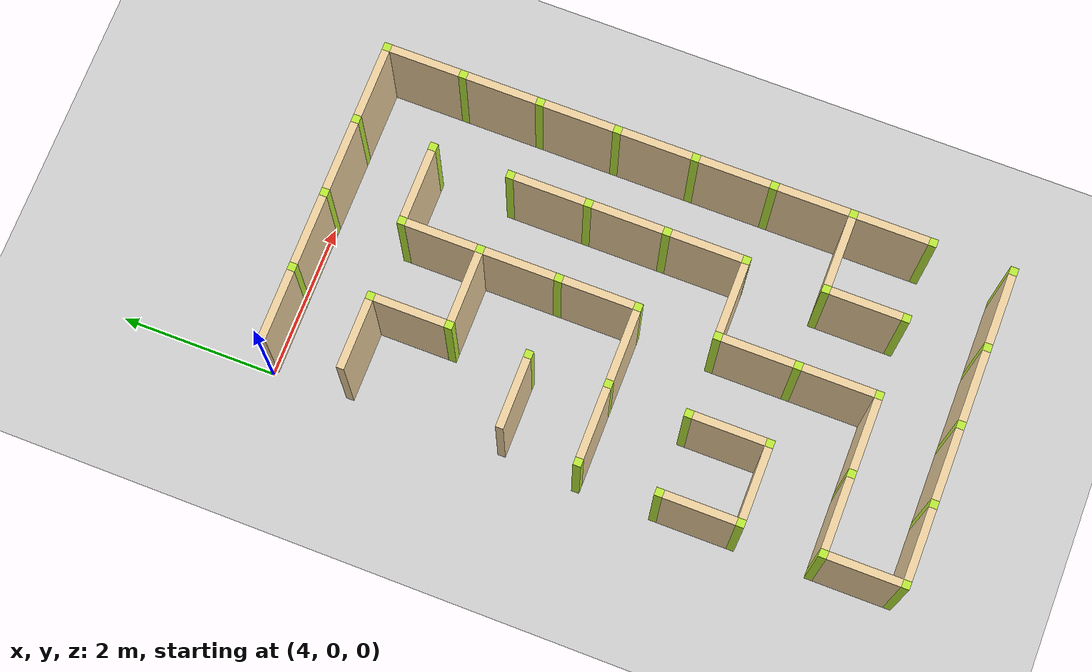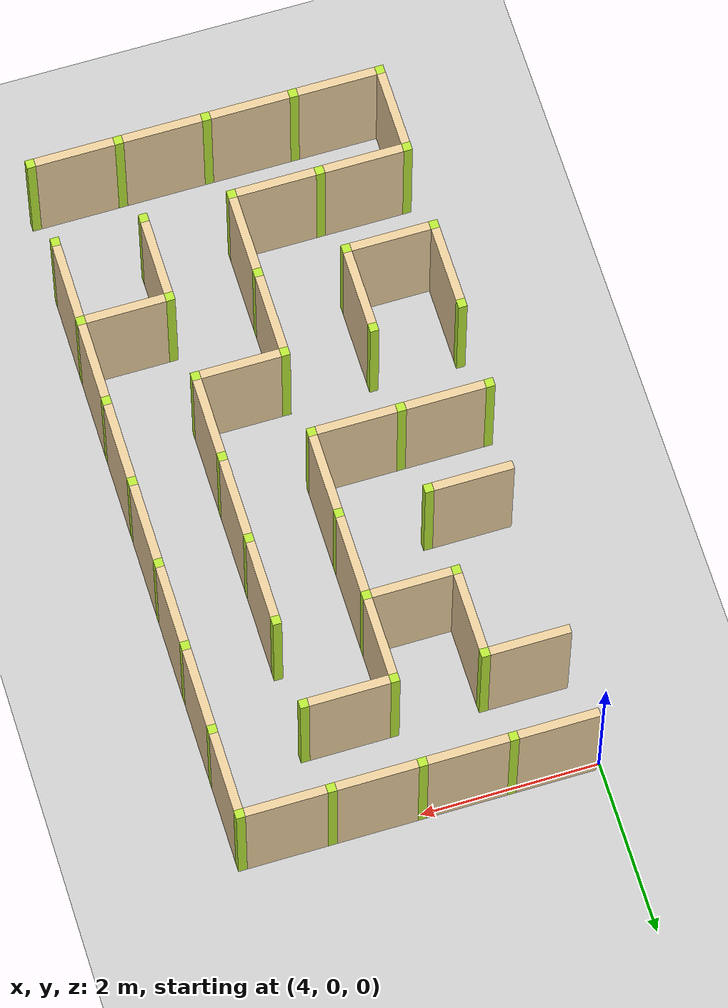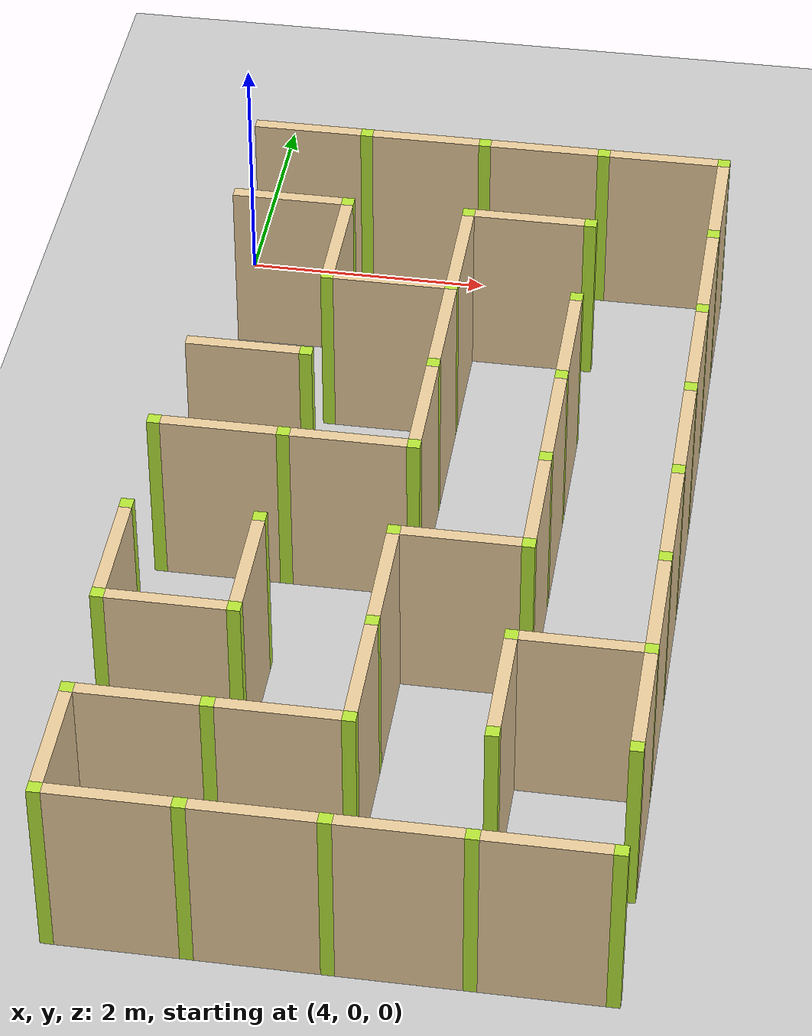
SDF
<sdf version="1.4">
 <world name="maze_world">
  <model name="ground">
   <static>true</static>
   <link name="ground_link">
    <collision name="collision1"><geometry><plane><normal>0 0 1</normal></plane></geometry></collision>
    <visual name="visual1"><geometry><plane><normal>0 0 1</normal><size>100 100</size></plane></geometry></visual>
   </link>
  </model>
  <model name="Untitled">
   <link name="Wall_4_0_h">
    <collision name="Wall_0_Collision">
     <geometry><box><size>0.9 0.1 1.5</size></box></geometry>
     <pose>0 0 0.75 0 -0 0</pose>
    </collision>
    <visual name="Wall_0_Visual">
     <pose>0 0 0.75 0 -0 0</pose>
     <geometry><box><size>0.9 0.1 1.5</size></box></geometry>
     <material>
      <script><uri>file://media/materials/scripts/gazebo.material</uri><name>Gazebo/Grey</name></script>
      <ambient>0.921569 0.807843 0.615686 1</ambient>
     </material>
     <meta><layer>0</layer></meta>
    </visual>
    <pose>4.5 0 0 0 -0 0</pose>
   </link>
   <link name="Wall_5_0_h">
    <collision name="Wall_0_Collision">
     <geometry><box><size>0.9 0.1 1.5</size></box></geometry>
     <pose>0 0 0.75 0 -0 0</pose>
    </collision>
    <visual name="Wall_0_Visual">
     <pose>0 0 0.75 0 -0 0</pose>
     <geometry><box><size>0.9 0.1 1.5</size></box></geometry>
     <material>
      <script><uri>file://media/materials/scripts/gazebo.material</uri><name>Gazebo/Grey</name></script>
      <ambient>0.921569 0.807843 0.615686 1</ambient>
     </material>
     <meta><layer>0</layer></meta>
    </visual>
    <pose>5.5 0 0 0 -0 0</pose>
   </link>
   <link name="Joint_5_0">
    <collision name="Wall_2_Collision">
     <geometry><box><size>0.1 0.1 1.5</size></box></geometry>
     <pose>0 0 0.75 0 -0 0</pose>
    </collision>
    <visual name="Wall_2_Visual">
     <pose>0 0 0.75 0 -0 0</pose>
     <geometry><box><size>0.1 0.1 1.5</size></box></geometry>
     <material>
      <script><uri>file://media/materials/scripts/gazebo.material</uri><name>Gazebo/Grey</name></script>
      <ambient>0.721569 0.907843 0.215686 1</ambient>
     </material>
     <meta><layer>0</layer></meta>
    </visual>
    <pose>5 0 0 0 -0 0</pose>
   </link>
   <link name="Wall_6_0_h">
    <collision name="Wall_0_Collision">
     <geometry><box><size>0.9 0.1 1.5</size></box></geometry>
     <pose>0 0 0.75 0 -0 0</pose>
    </collision>
    <visual name="Wall_0_Visual">
     <pose>0 0 0.75 0 -0 0</pose>
     <geometry><box><size>0.9 0.1 1.5</size></box></geometry>
     <material>
      <script><uri>file://media/materials/scripts/gazebo.material</uri><name>Gazebo/Grey</name></script>
      <ambient>0.921569 0.807843 0.615686 1</ambient>
     </material>
     <meta><layer>0</layer></meta>
    </visual>
    <pose>6.5 0 0 0 -0 0</pose>
   </link>
   <link name="Joint_6_0">
    <collision name="Wall_2_Collision">
     <geometry><box><size>0.1 0.1 1.5</size></box></geometry>
     <pose>0 0 0.75 0 -0 0</pose>
    </collision>
    <visual name="Wall_2_Visual">
     <pose>0 0 0.75 0 -0 0</pose>
     <geometry><box><size>0.1 0.1 1.5</size></box></geometry>
     <material>
      <script><uri>file://media/materials/scripts/gazebo.material</uri><name>Gazebo/Grey</name></script>
      <ambient>0.721569 0.907843 0.215686 1</ambient>
     </material>
     <meta><layer>0</layer></meta>
    </visual>
    <pose>6 0 0 0 -0 0</pose>
   </link>
   <link name="Wall_7_0_h">
    <collision name="Wall_0_Collision">
     <geometry><box><size>0.9 0.1 1.5</size></box></geometry>
     <pose>0 0 0.75 0 -0 0</pose>
    </collision>
    <visual name="Wall_0_Visual">
     <pose>0 0 0.75 0 -0 0</pose>
     <geometry><box><size>0.9 0.1 1.5</size></box></geometry>
     <material>
      <script><uri>file://media/materials/scripts/gazebo.material</uri><name>Gazebo/Grey</name></script>
      <ambient>0.921569 0.807843 0.615686 1</ambient>
     </material>
     <meta><layer>0</layer></meta>
    </visual>
    <pose>7.5 0 0 0 -0 0</pose>
   </link>
   <link name="Joint_7_0">
    <collision name="Wall_2_Collision">
     <geometry><box><size>0.1 0.1 1.5</size></box></geometry>
     <pose>0 0 0.75 0 -0 0</pose>
    </collision>
    <visual name="Wall_2_Visual">
     <pose>0 0 0.75 0 -0 0</pose>
     <geometry><box><size>0.1 0.1 1.5</size></box></geometry>
     <material>
      <script><uri>file://media/materials/scripts/gazebo.material</uri><name>Gazebo/Grey</name></script>
      <ambient>0.721569 0.907843 0.215686 1</ambient>
     </material>
     <meta><layer>0</layer></meta>
    </visual>
    <pose>7 0 0 0 -0 0</pose>
   </link>
   <link name="Wall_8_0_v">
    <collision name="Wall_0_Collision">
     <geometry><box><size>0.9 0.1 1.5</size></box></geometry>
     <pose>0 0 0.75 0 -0 0</pose>
    </collision>
    <visual name="Wall_0_Visual">
     <pose>0 0 0.75 0 -0 0</pose>
     <geometry><box><size>0.9 0.1 1.5</size></box></geometry>
     <material>
      <script><uri>file://media/materials/scripts/gazebo.material</uri><name>Gazebo/Grey</name></script>
      <ambient>0.921569 0.807843 0.615686 1</ambient>
     </material>
     <meta><layer>0</layer></meta>
    </visual>
    <pose>8 -0.5 0 0 -0 1.5708</pose>
   </link>
   <link name="Joint_8_0">
    <collision name="Wall_2_Collision">
     <geometry><box><size>0.1 0.1 1.5</size></box></geometry>
     <pose>0 0 0.75 0 -0 0</pose>
    </collision>
    <visual name="Wall_2_Visual">
     <pose>0 0 0.75 0 -0 0</pose>
     <geometry><box><size>0.1 0.1 1.5</size></box></geometry>
     <material>
      <script><uri>file://media/materials/scripts/gazebo.material</uri><name>Gazebo/Grey</name></script>
      <ambient>0.721569 0.907843 0.215686 1</ambient>
     </material>
     <meta><layer>0</layer></meta>
    </visual>
    <pose>8 0 0 0 -0 0</pose>
   </link>
   <link name="Wall_4_1_h">
    <collision name="Wall_0_Collision">
     <geometry><box><size>0.9 0.1 1.5</size></box></geometry>
     <pose>0 0 0.75 0 -0 0</pose>
    </collision>
    <visual name="Wall_0_Visual">
     <pose>0 0 0.75 0 -0 0</pose>
     <geometry><box><size>0.9 0.1 1.5</size></box></geometry>
     <material>
      <script><uri>file://media/materials/scripts/gazebo.material</uri><name>Gazebo/Grey</name></script>
      <ambient>0.921569 0.807843 0.615686 1</ambient>
     </material>
     <meta><layer>0</layer></meta>
    </visual>
    <pose>4.5 -1 0 0 -0 0</pose>
   </link>
   <link name="Wall_5_1_v">
    <collision name="Wall_0_Collision">
     <geometry><box><size>0.9 0.1 1.5</size></box></geometry>
     <pose>0 0 0.75 0 -0 0</pose>
    </collision>
    <visual name="Wall_0_Visual">
     <pose>0 0 0.75 0 -0 0</pose>
     <geometry><box><size>0.9 0.1 1.5</size></box></geometry>
     <material>
      <script><uri>file://media/materials/scripts/gazebo.material</uri><name>Gazebo/Grey</name></script>
      <ambient>0.921569 0.807843 0.615686 1</ambient>
     </material>
     <meta><layer>0</layer></meta>
    </visual>
    <pose>5 -1.5 0 0 -0 1.5708</pose>
   </link>
   <link name="Joint_5_-1">
    <collision name="Wall_2_Collision">
     <geometry><box><size>0.1 0.1 1.5</size></box></geometry>
     <pose>0 0 0.75 0 -0 0</pose>
    </collision>
    <visual name="Wall_2_Visual">
     <pose>0 0 0.75 0 -0 0</pose>
     <geometry><box><size>0.1 0.1 1.5</size></box></geometry>
     <material>
      <script><uri>file://media/materials/scripts/gazebo.material</uri><name>Gazebo/Grey</name></script>
      <ambient>0.721569 0.907843 0.215686 1</ambient>
     </material>
     <meta><layer>0</layer></meta>
    </visual>
    <pose>5 -1 0 0 -0 0</pose>
   </link>
   <link name="Wall_6_1_h">
    <collision name="Wall_0_Collision">
     <geometry><box><size>0.9 0.1 1.5</size></box></geometry>
     <pose>0 0 0.75 0 -0 0</pose>
    </collision>
    <visual name="Wall_0_Visual">
     <pose>0 0 0.75 0 -0 0</pose>
     <geometry><box><size>0.9 0.1 1.5</size></box></geometry>
     <material>
      <script><uri>file://media/materials/scripts/gazebo.material</uri><name>Gazebo/Grey</name></script>
      <ambient>0.921569 0.807843 0.615686 1</ambient>
     </material>
     <meta><layer>0</layer></meta>
    </visual>
    <pose>6.5 -1 0 0 -0 0</pose>
   </link>
   <link name="Wall_6_1_v">
    <collision name="Wall_0_Collision">
     <geometry><box><size>0.9 0.1 1.5</size></box></geometry>
     <pose>0 0 0.75 0 -0 0</pose>
    </collision>
    <visual name="Wall_0_Visual">
     <pose>0 0 0.75 0 -0 0</pose>
     <geometry><box><size>0.9 0.1 1.5</size></box></geometry>
     <material>
      <script><uri>file://media/materials/scripts/gazebo.material</uri><name>Gazebo/Grey</name></script>
      <ambient>0.921569 0.807843 0.615686 1</ambient>
     </material>
     <meta><layer>0</layer></meta>
    </visual>
    <pose>6 -1.5 0 0 -0 1.5708</pose>
   </link>
   <link name="Joint_6_-1">
    <collision name="Wall_2_Collision">
     <geometry><box><size>0.1 0.1 1.5</size></box></geometry>
     <pose>0 0 0.75 0 -0 0</pose>
    </collision>
    <visual name="Wall_2_Visual">
     <pose>0 0 0.75 0 -0 0</pose>
     <geometry><box><size>0.1 0.1 1.5</size></box></geometry>
     <material>
      <script><uri>file://media/materials/scripts/gazebo.material</uri><name>Gazebo/Grey</name></script>
      <ambient>0.721569 0.907843 0.215686 1</ambient>
     </material>
     <meta><layer>0</layer></meta>
    </visual>
    <pose>6 -1 0 0 -0 0</pose>
   </link>
   <link name="Joint_7_-1">
    <collision name="Wall_2_Collision">
     <geometry><box><size>0.1 0.1 1.5</size></box></geometry>
     <pose>0 0 0.75 0 -0 0</pose>
    </collision>
    <visual name="Wall_2_Visual">
     <pose>0 0 0.75 0 -0 0</pose>
     <geometry><box><size>0.1 0.1 1.5</size></box></geometry>
     <material>
      <script><uri>file://media/materials/scripts/gazebo.material</uri><name>Gazebo/Grey</name></script>
      <ambient>0.721569 0.907843 0.215686 1</ambient>
     </material>
     <meta><layer>0</layer></meta>
    </visual>
    <pose>7 -1 0 0 -0 0</pose>
   </link>
   <link name="Wall_8_1_v">
    <collision name="Wall_0_Collision">
     <geometry><box><size>0.9 0.1 1.5</size></box></geometry>
     <pose>0 0 0.75 0 -0 0</pose>
    </collision>
    <visual name="Wall_0_Visual">
     <pose>0 0 0.75 0 -0 0</pose>
     <geometry><box><size>0.9 0.1 1.5</size></box></geometry>
     <material>
      <script><uri>file://media/materials/scripts/gazebo.material</uri><name>Gazebo/Grey</name></script>
      <ambient>0.921569 0.807843 0.615686 1</ambient>
     </material>
     <meta><layer>0</layer></meta>
    </visual>
    <pose>8 -1.5 0 0 -0 1.5708</pose>
   </link>
   <link name="Joint_8_-1">
    <collision name="Wall_2_Collision">
     <geometry><box><size>0.1 0.1 1.5</size></box></geometry>
     <pose>0 0 0.75 0 -0 0</pose>
    </collision>
    <visual name="Wall_2_Visual">
     <pose>0 0 0.75 0 -0 0</pose>
     <geometry><box><size>0.1 0.1 1.5</size></box></geometry>
     <material>
      <script><uri>file://media/materials/scripts/gazebo.material</uri><name>Gazebo/Grey</name></script>
      <ambient>0.721569 0.907843 0.215686 1</ambient>
     </material>
     <meta><layer>0</layer></meta>
    </visual>
    <pose>8 -1 0 0 -0 0</pose>
   </link>
   <link name="Wall_5_2_h">
    <collision name="Wall_0_Collision">
     <geometry><box><size>0.9 0.1 1.5</size></box></geometry>
     <pose>0 0 0.75 0 -0 0</pose>
    </collision>
    <visual name="Wall_0_Visual">
     <pose>0 0 0.75 0 -0 0</pose>
     <geometry><box><size>0.9 0.1 1.5</size></box></geometry>
     <material>
      <script><uri>file://media/materials/scripts/gazebo.material</uri><name>Gazebo/Grey</name></script>
      <ambient>0.921569 0.807843 0.615686 1</ambient>
     </material>
     <meta><layer>0</layer></meta>
    </visual>
    <pose>5.5 -2 0 0 -0 0</pose>
   </link>
   <link name="Joint_5_-2">
    <collision name="Wall_2_Collision">
     <geometry><box><size>0.1 0.1 1.5</size></box></geometry>
     <pose>0 0 0.75 0 -0 0</pose>
    </collision>
    <visual name="Wall_2_Visual">
     <pose>0 0 0.75 0 -0 0</pose>
     <geometry><box><size>0.1 0.1 1.5</size></box></geometry>
     <material>
      <script><uri>file://media/materials/scripts/gazebo.material</uri><name>Gazebo/Grey</name></script>
      <ambient>0.721569 0.907843 0.215686 1</ambient>
     </material>
     <meta><layer>0</layer></meta>
    </visual>
    <pose>5 -2 0 0 -0 0</pose>
   </link>
   <link name="Wall_6_2_v">
    <collision name="Wall_0_Collision">
     <geometry><box><size>0.9 0.1 1.5</size></box></geometry>
     <pose>0 0 0.75 0 -0 0</pose>
    </collision>
    <visual name="Wall_0_Visual">
     <pose>0 0 0.75 0 -0 0</pose>
     <geometry><box><size>0.9 0.1 1.5</size></box></geometry>
     <material>
      <script><uri>file://media/materials/scripts/gazebo.material</uri><name>Gazebo/Grey</name></script>
      <ambient>0.921569 0.807843 0.615686 1</ambient>
     </material>
     <meta><layer>0</layer></meta>
    </visual>
    <pose>6 -2.5 0 0 -0 1.5708</pose>
   </link>
   <link name="Joint_6_-2">
    <collision name="Wall_2_Collision">
     <geometry><box><size>0.1 0.1 1.5</size></box></geometry>
     <pose>0 0 0.75 0 -0 0</pose>
    </collision>
    <visual name="Wall_2_Visual">
     <pose>0 0 0.75 0 -0 0</pose>
     <geometry><box><size>0.1 0.1 1.5</size></box></geometry>
     <material>
      <script><uri>file://media/materials/scripts/gazebo.material</uri><name>Gazebo/Grey</name></script>
      <ambient>0.721569 0.907843 0.215686 1</ambient>
     </material>
     <meta><layer>0</layer></meta>
    </visual>
    <pose>6 -2 0 0 -0 0</pose>
   </link>
   <link name="Wall_7_2_v">
    <collision name="Wall_0_Collision">
     <geometry><box><size>0.9 0.1 1.5</size></box></geometry>
     <pose>0 0 0.75 0 -0 0</pose>
    </collision>
    <visual name="Wall_0_Visual">
     <pose>0 0 0.75 0 -0 0</pose>
     <geometry><box><size>0.9 0.1 1.5</size></box></geometry>
     <material>
      <script><uri>file://media/materials/scripts/gazebo.material</uri><name>Gazebo/Grey</name></script>
      <ambient>0.921569 0.807843 0.615686 1</ambient>
     </material>
     <meta><layer>0</layer></meta>
    </visual>
    <pose>7 -2.5 0 0 -0 1.5708</pose>
   </link>
   <link name="Joint_7_-2">
    <collision name="Wall_2_Collision">
     <geometry><box><size>0.1 0.1 1.5</size></box></geometry>
     <pose>0 0 0.75 0 -0 0</pose>
    </collision>
    <visual name="Wall_2_Visual">
     <pose>0 0 0.75 0 -0 0</pose>
     <geometry><box><size>0.1 0.1 1.5</size></box></geometry>
     <material>
      <script><uri>file://media/materials/scripts/gazebo.material</uri><name>Gazebo/Grey</name></script>
      <ambient>0.721569 0.907843 0.215686 1</ambient>
     </material>
     <meta><layer>0</layer></meta>
    </visual>
    <pose>7 -2 0 0 -0 0</pose>
   </link>
   <link name="Wall_8_2_v">
    <collision name="Wall_0_Collision">
     <geometry><box><size>0.9 0.1 1.5</size></box></geometry>
     <pose>0 0 0.75 0 -0 0</pose>
    </collision>
    <visual name="Wall_0_Visual">
     <pose>0 0 0.75 0 -0 0</pose>
     <geometry><box><size>0.9 0.1 1.5</size></box></geometry>
     <material>
      <script><uri>file://media/materials/scripts/gazebo.material</uri><name>Gazebo/Grey</name></script>
      <ambient>0.921569 0.807843 0.615686 1</ambient>
     </material>
     <meta><layer>0</layer></meta>
    </visual>
    <pose>8 -2.5 0 0 -0 1.5708</pose>
   </link>
   <link name="Joint_8_-2">
    <collision name="Wall_2_Collision">
     <geometry><box><size>0.1 0.1 1.5</size></box></geometry>
     <pose>0 0 0.75 0 -0 0</pose>
    </collision>
    <visual name="Wall_2_Visual">
     <pose>0 0 0.75 0 -0 0</pose>
     <geometry><box><size>0.1 0.1 1.5</size></box></geometry>
     <material>
      <script><uri>file://media/materials/scripts/gazebo.material</uri><name>Gazebo/Grey</name></script>
      <ambient>0.721569 0.907843 0.215686 1</ambient>
     </material>
     <meta><layer>0</layer></meta>
    </visual>
    <pose>8 -2 0 0 -0 0</pose>
   </link>
   <link name="Wall_4_3_h">
    <collision name="Wall_0_Collision">
     <geometry><box><size>0.9 0.1 1.5</size></box></geometry>
     <pose>0 0 0.75 0 -0 0</pose>
    </collision>
    <visual name="Wall_0_Visual">
     <pose>0 0 0.75 0 -0 0</pose>
     <geometry><box><size>0.9 0.1 1.5</size></box></geometry>
     <material>
      <script><uri>file://media/materials/scripts/gazebo.material</uri><name>Gazebo/Grey</name></script>
      <ambient>0.921569 0.807843 0.615686 1</ambient>
     </material>
     <meta><layer>0</layer></meta>
    </visual>
    <pose>4.5 -3 0 0 -0 0</pose>
   </link>
   <link name="Joint_5_-3">
    <collision name="Wall_2_Collision">
     <geometry><box><size>0.1 0.1 1.5</size></box></geometry>
     <pose>0 0 0.75 0 -0 0</pose>
    </collision>
    <visual name="Wall_2_Visual">
     <pose>0 0 0.75 0 -0 0</pose>
     <geometry><box><size>0.1 0.1 1.5</size></box></geometry>
     <material>
      <script><uri>file://media/materials/scripts/gazebo.material</uri><name>Gazebo/Grey</name></script>
      <ambient>0.721569 0.907843 0.215686 1</ambient>
     </material>
     <meta><layer>0</layer></meta>
    </visual>
    <pose>5 -3 0 0 -0 0</pose>
   </link>
   <link name="Wall_6_3_v">
    <collision name="Wall_0_Collision">
     <geometry><box><size>0.9 0.1 1.5</size></box></geometry>
     <pose>0 0 0.75 0 -0 0</pose>
    </collision>
    <visual name="Wall_0_Visual">
     <pose>0 0 0.75 0 -0 0</pose>
     <geometry><box><size>0.9 0.1 1.5</size></box></geometry>
     <material>
      <script><uri>file://media/materials/scripts/gazebo.material</uri><name>Gazebo/Grey</name></script>
      <ambient>0.921569 0.807843 0.615686 1</ambient>
     </material>
     <meta><layer>0</layer></meta>
    </visual>
    <pose>6 -3.5 0 0 -0 1.5708</pose>
   </link>
   <link name="Joint_6_-3">
    <collision name="Wall_2_Collision">
     <geometry><box><size>0.1 0.1 1.5</size></box></geometry>
     <pose>0 0 0.75 0 -0 0</pose>
    </collision>
    <visual name="Wall_2_Visual">
     <pose>0 0 0.75 0 -0 0</pose>
     <geometry><box><size>0.1 0.1 1.5</size></box></geometry>
     <material>
      <script><uri>file://media/materials/scripts/gazebo.material</uri><name>Gazebo/Grey</name></script>
      <ambient>0.721569 0.907843 0.215686 1</ambient>
     </material>
     <meta><layer>0</layer></meta>
    </visual>
    <pose>6 -3 0 0 -0 0</pose>
   </link>
   <link name="Wall_7_3_v">
    <collision name="Wall_0_Collision">
     <geometry><box><size>0.9 0.1 1.5</size></box></geometry>
     <pose>0 0 0.75 0 -0 0</pose>
    </collision>
    <visual name="Wall_0_Visual">
     <pose>0 0 0.75 0 -0 0</pose>
     <geometry><box><size>0.9 0.1 1.5</size></box></geometry>
     <material>
      <script><uri>file://media/materials/scripts/gazebo.material</uri><name>Gazebo/Grey</name></script>
      <ambient>0.921569 0.807843 0.615686 1</ambient>
     </material>
     <meta><layer>0</layer></meta>
    </visual>
    <pose>7 -3.5 0 0 -0 1.5708</pose>
   </link>
   <link name="Joint_7_-3">
    <collision name="Wall_2_Collision">
     <geometry><box><size>0.1 0.1 1.5</size></box></geometry>
     <pose>0 0 0.75 0 -0 0</pose>
    </collision>
    <visual name="Wall_2_Visual">
     <pose>0 0 0.75 0 -0 0</pose>
     <geometry><box><size>0.1 0.1 1.5</size></box></geometry>
     <material>
      <script><uri>file://media/materials/scripts/gazebo.material</uri><name>Gazebo/Grey</name></script>
      <ambient>0.721569 0.907843 0.215686 1</ambient>
     </material>
     <meta><layer>0</layer></meta>
    </visual>
    <pose>7 -3 0 0 -0 0</pose>
   </link>
   <link name="Wall_8_3_v">
    <collision name="Wall_0_Collision">
     <geometry><box><size>0.9 0.1 1.5</size></box></geometry>
     <pose>0 0 0.75 0 -0 0</pose>
    </collision>
    <visual name="Wall_0_Visual">
     <pose>0 0 0.75 0 -0 0</pose>
     <geometry><box><size>0.9 0.1 1.5</size></box></geometry>
     <material>
      <script><uri>file://media/materials/scripts/gazebo.material</uri><name>Gazebo/Grey</name></script>
      <ambient>0.921569 0.807843 0.615686 1</ambient>
     </material>
     <meta><layer>0</layer></meta>
    </visual>
    <pose>8 -3.5 0 0 -0 1.5708</pose>
   </link>
   <link name="Joint_8_-3">
    <collision name="Wall_2_Collision">
     <geometry><box><size>0.1 0.1 1.5</size></box></geometry>
     <pose>0 0 0.75 0 -0 0</pose>
    </collision>
    <visual name="Wall_2_Visual">
     <pose>0 0 0.75 0 -0 0</pose>
     <geometry><box><size>0.1 0.1 1.5</size></box></geometry>
     <material>
      <script><uri>file://media/materials/scripts/gazebo.material</uri><name>Gazebo/Grey</name></script>
      <ambient>0.721569 0.907843 0.215686 1</ambient>
     </material>
     <meta><layer>0</layer></meta>
    </visual>
    <pose>8 -3 0 0 -0 0</pose>
   </link>
   <link name="Wall_4_4_h">
    <collision name="Wall_0_Collision">
     <geometry><box><size>0.9 0.1 1.5</size></box></geometry>
     <pose>0 0 0.75 0 -0 0</pose>
    </collision>
    <visual name="Wall_0_Visual">
     <pose>0 0 0.75 0 -0 0</pose>
     <geometry><box><size>0.9 0.1 1.5</size></box></geometry>
     <material>
      <script><uri>file://media/materials/scripts/gazebo.material</uri><name>Gazebo/Grey</name></script>
      <ambient>0.921569 0.807843 0.615686 1</ambient>
     </material>
     <meta><layer>0</layer></meta>
    </visual>
    <pose>4.5 -4 0 0 -0 0</pose>
   </link>
   <link name="Joint_4_-4">
    <collision name="Wall_2_Collision">
     <geometry><box><size>0.1 0.1 1.5</size></box></geometry>
     <pose>0 0 0.75 0 -0 0</pose>
    </collision>
    <visual name="Wall_2_Visual">
     <pose>0 0 0.75 0 -0 0</pose>
     <geometry><box><size>0.1 0.1 1.5</size></box></geometry>
     <material>
      <script><uri>file://media/materials/scripts/gazebo.material</uri><name>Gazebo/Grey</name></script>
      <ambient>0.721569 0.907843 0.215686 1</ambient>
     </material>
     <meta><layer>0</layer></meta>
    </visual>
    <pose>4 -4 0 0 -0 0</pose>
   </link>
   <link name="Wall_5_4_h">
    <collision name="Wall_0_Collision">
     <geometry><box><size>0.9 0.1 1.5</size></box></geometry>
     <pose>0 0 0.75 0 -0 0</pose>
    </collision>
    <visual name="Wall_0_Visual">
     <pose>0 0 0.75 0 -0 0</pose>
     <geometry><box><size>0.9 0.1 1.5</size></box></geometry>
     <material>
      <script><uri>file://media/materials/scripts/gazebo.material</uri><name>Gazebo/Grey</name></script>
      <ambient>0.921569 0.807843 0.615686 1</ambient>
     </material>
     <meta><layer>0</layer></meta>
    </visual>
    <pose>5.5 -4 0 0 -0 0</pose>
   </link>
   <link name="Joint_5_-4">
    <collision name="Wall_2_Collision">
     <geometry><box><size>0.1 0.1 1.5</size></box></geometry>
     <pose>0 0 0.75 0 -0 0</pose>
    </collision>
    <visual name="Wall_2_Visual">
     <pose>0 0 0.75 0 -0 0</pose>
     <geometry><box><size>0.1 0.1 1.5</size></box></geometry>
     <material>
      <script><uri>file://media/materials/scripts/gazebo.material</uri><name>Gazebo/Grey</name></script>
      <ambient>0.721569 0.907843 0.215686 1</ambient>
     </material>
     <meta><layer>0</layer></meta>
    </visual>
    <pose>5 -4 0 0 -0 0</pose>
   </link>
   <link name="Joint_6_-4">
    <collision name="Wall_2_Collision">
     <geometry><box><size>0.1 0.1 1.5</size></box></geometry>
     <pose>0 0 0.75 0 -0 0</pose>
    </collision>
    <visual name="Wall_2_Visual">
     <pose>0 0 0.75 0 -0 0</pose>
     <geometry><box><size>0.1 0.1 1.5</size></box></geometry>
     <material>
      <script><uri>file://media/materials/scripts/gazebo.material</uri><name>Gazebo/Grey</name></script>
      <ambient>0.721569 0.907843 0.215686 1</ambient>
     </material>
     <meta><layer>0</layer></meta>
    </visual>
    <pose>6 -4 0 0 -0 0</pose>
   </link>
   <link name="Wall_7_4_v">
    <collision name="Wall_0_Collision">
     <geometry><box><size>0.9 0.1 1.5</size></box></geometry>
     <pose>0 0 0.75 0 -0 0</pose>
    </collision>
    <visual name="Wall_0_Visual">
     <pose>0 0 0.75 0 -0 0</pose>
     <geometry><box><size>0.9 0.1 1.5</size></box></geometry>
     <material>
      <script><uri>file://media/materials/scripts/gazebo.material</uri><name>Gazebo/Grey</name></script>
      <ambient>0.921569 0.807843 0.615686 1</ambient>
     </material>
     <meta><layer>0</layer></meta>
    </visual>
    <pose>7 -4.5 0 0 -0 1.5708</pose>
   </link>
   <link name="Joint_7_-4">
    <collision name="Wall_2_Collision">
     <geometry><box><size>0.1 0.1 1.5</size></box></geometry>
     <pose>0 0 0.75 0 -0 0</pose>
    </collision>
    <visual name="Wall_2_Visual">
     <pose>0 0 0.75 0 -0 0</pose>
     <geometry><box><size>0.1 0.1 1.5</size></box></geometry>
     <material>
      <script><uri>file://media/materials/scripts/gazebo.material</uri><name>Gazebo/Grey</name></script>
      <ambient>0.721569 0.907843 0.215686 1</ambient>
     </material>
     <meta><layer>0</layer></meta>
    </visual>
    <pose>7 -4 0 0 -0 0</pose>
   </link>
   <link name="Wall_8_4_v">
    <collision name="Wall_0_Collision">
     <geometry><box><size>0.9 0.1 1.5</size></box></geometry>
     <pose>0 0 0.75 0 -0 0</pose>
    </collision>
    <visual name="Wall_0_Visual">
     <pose>0 0 0.75 0 -0 0</pose>
     <geometry><box><size>0.9 0.1 1.5</size></box></geometry>
     <material>
      <script><uri>file://media/materials/scripts/gazebo.material</uri><name>Gazebo/Grey</name></script>
      <ambient>0.921569 0.807843 0.615686 1</ambient>
     </material>
     <meta><layer>0</layer></meta>
    </visual>
    <pose>8 -4.5 0 0 -0 1.5708</pose>
   </link>
   <link name="Joint_8_-4">
    <collision name="Wall_2_Collision">
     <geometry><box><size>0.1 0.1 1.5</size></box></geometry>
     <pose>0 0 0.75 0 -0 0</pose>
    </collision>
    <visual name="Wall_2_Visual">
     <pose>0 0 0.75 0 -0 0</pose>
     <geometry><box><size>0.1 0.1 1.5</size></box></geometry>
     <material>
      <script><uri>file://media/materials/scripts/gazebo.material</uri><name>Gazebo/Grey</name></script>
      <ambient>0.721569 0.907843 0.215686 1</ambient>
     </material>
     <meta><layer>0</layer></meta>
    </visual>
    <pose>8 -4 0 0 -0 0</pose>
   </link>
   <link name="Wall_4_5_v">
    <collision name="Wall_0_Collision">
     <geometry><box><size>0.9 0.1 1.5</size></box></geometry>
     <pose>0 0 0.75 0 -0 0</pose>
    </collision>
    <visual name="Wall_0_Visual">
     <pose>0 0 0.75 0 -0 0</pose>
     <geometry><box><size>0.9 0.1 1.5</size></box></geometry>
     <material>
      <script><uri>file://media/materials/scripts/gazebo.material</uri><name>Gazebo/Grey</name></script>
      <ambient>0.921569 0.807843 0.615686 1</ambient>
     </material>
     <meta><layer>0</layer></meta>
    </visual>
    <pose>4 -5.5 0 0 -0 1.5708</pose>
   </link>
   <link name="Joint_4_-5">
    <collision name="Wall_2_Collision">
     <geometry><box><size>0.1 0.1 1.5</size></box></geometry>
     <pose>0 0 0.75 0 -0 0</pose>
    </collision>
    <visual name="Wall_2_Visual">
     <pose>0 0 0.75 0 -0 0</pose>
     <geometry><box><size>0.1 0.1 1.5</size></box></geometry>
     <material>
      <script><uri>file://media/materials/scripts/gazebo.material</uri><name>Gazebo/Grey</name></script>
      <ambient>0.721569 0.907843 0.215686 1</ambient>
     </material>
     <meta><layer>0</layer></meta>
    </visual>
    <pose>4 -5 0 0 -0 0</pose>
   </link>
   <link name="Wall_5_5_v">
    <collision name="Wall_0_Collision">
     <geometry><box><size>0.9 0.1 1.5</size></box></geometry>
     <pose>0 0 0.75 0 -0 0</pose>
    </collision>
    <visual name="Wall_0_Visual">
     <pose>0 0 0.75 0 -0 0</pose>
     <geometry><box><size>0.9 0.1 1.5</size></box></geometry>
     <material>
      <script><uri>file://media/materials/scripts/gazebo.material</uri><name>Gazebo/Grey</name></script>
      <ambient>0.921569 0.807843 0.615686 1</ambient>
     </material>
     <meta><layer>0</layer></meta>
    </visual>
    <pose>5 -5.5 0 0 -0 1.5708</pose>
   </link>
   <link name="Joint_5_-5">
    <collision name="Wall_2_Collision">
     <geometry><box><size>0.1 0.1 1.5</size></box></geometry>
     <pose>0 0 0.75 0 -0 0</pose>
    </collision>
    <visual name="Wall_2_Visual">
     <pose>0 0 0.75 0 -0 0</pose>
     <geometry><box><size>0.1 0.1 1.5</size></box></geometry>
     <material>
      <script><uri>file://media/materials/scripts/gazebo.material</uri><name>Gazebo/Grey</name></script>
      <ambient>0.721569 0.907843 0.215686 1</ambient>
     </material>
     <meta><layer>0</layer></meta>
    </visual>
    <pose>5 -5 0 0 -0 0</pose>
   </link>
   <link name="Wall_6_5_h">
    <collision name="Wall_0_Collision">
     <geometry><box><size>0.9 0.1 1.5</size></box></geometry>
     <pose>0 0 0.75 0 -0 0</pose>
    </collision>
    <visual name="Wall_0_Visual">
     <pose>0 0 0.75 0 -0 0</pose>
     <geometry><box><size>0.9 0.1 1.5</size></box></geometry>
     <material>
      <script><uri>file://media/materials/scripts/gazebo.material</uri><name>Gazebo/Grey</name></script>
      <ambient>0.921569 0.807843 0.615686 1</ambient>
     </material>
     <meta><layer>0</layer></meta>
    </visual>
    <pose>6.5 -5 0 0 -0 0</pose>
   </link>
   <link name="Wall_6_5_v">
    <collision name="Wall_0_Collision">
     <geometry><box><size>0.9 0.1 1.5</size></box></geometry>
     <pose>0 0 0.75 0 -0 0</pose>
    </collision>
    <visual name="Wall_0_Visual">
     <pose>0 0 0.75 0 -0 0</pose>
     <geometry><box><size>0.9 0.1 1.5</size></box></geometry>
     <material>
      <script><uri>file://media/materials/scripts/gazebo.material</uri><name>Gazebo/Grey</name></script>
      <ambient>0.921569 0.807843 0.615686 1</ambient>
     </material>
     <meta><layer>0</layer></meta>
    </visual>
    <pose>6 -5.5 0 0 -0 1.5708</pose>
   </link>
   <link name="Joint_6_-5">
    <collision name="Wall_2_Collision">
     <geometry><box><size>0.1 0.1 1.5</size></box></geometry>
     <pose>0 0 0.75 0 -0 0</pose>
    </collision>
    <visual name="Wall_2_Visual">
     <pose>0 0 0.75 0 -0 0</pose>
     <geometry><box><size>0.1 0.1 1.5</size></box></geometry>
     <material>
      <script><uri>file://media/materials/scripts/gazebo.material</uri><name>Gazebo/Grey</name></script>
      <ambient>0.721569 0.907843 0.215686 1</ambient>
     </material>
     <meta><layer>0</layer></meta>
    </visual>
    <pose>6 -5 0 0 -0 0</pose>
   </link>
   <link name="Joint_7_-5">
    <collision name="Wall_2_Collision">
     <geometry><box><size>0.1 0.1 1.5</size></box></geometry>
     <pose>0 0 0.75 0 -0 0</pose>
    </collision>
    <visual name="Wall_2_Visual">
     <pose>0 0 0.75 0 -0 0</pose>
     <geometry><box><size>0.1 0.1 1.5</size></box></geometry>
     <material>
      <script><uri>file://media/materials/scripts/gazebo.material</uri><name>Gazebo/Grey</name></script>
      <ambient>0.721569 0.907843 0.215686 1</ambient>
     </material>
     <meta><layer>0</layer></meta>
    </visual>
    <pose>7 -5 0 0 -0 0</pose>
   </link>
   <link name="Wall_8_5_v">
    <collision name="Wall_0_Collision">
     <geometry><box><size>0.9 0.1 1.5</size></box></geometry>
     <pose>0 0 0.75 0 -0 0</pose>
    </collision>
    <visual name="Wall_0_Visual">
     <pose>0 0 0.75 0 -0 0</pose>
     <geometry><box><size>0.9 0.1 1.5</size></box></geometry>
     <material>
      <script><uri>file://media/materials/scripts/gazebo.material</uri><name>Gazebo/Grey</name></script>
      <ambient>0.921569 0.807843 0.615686 1</ambient>
     </material>
     <meta><layer>0</layer></meta>
    </visual>
    <pose>8 -5.5 0 0 -0 1.5708</pose>
   </link>
   <link name="Joint_8_-5">
    <collision name="Wall_2_Collision">
     <geometry><box><size>0.1 0.1 1.5</size></box></geometry>
     <pose>0 0 0.75 0 -0 0</pose>
    </collision>
    <visual name="Wall_2_Visual">
     <pose>0 0 0.75 0 -0 0</pose>
     <geometry><box><size>0.1 0.1 1.5</size></box></geometry>
     <material>
      <script><uri>file://media/materials/scripts/gazebo.material</uri><name>Gazebo/Grey</name></script>
      <ambient>0.721569 0.907843 0.215686 1</ambient>
     </material>
     <meta><layer>0</layer></meta>
    </visual>
    <pose>8 -5 0 0 -0 0</pose>
   </link>
   <link name="Wall_4_6_h">
    <collision name="Wall_0_Collision">
     <geometry><box><size>0.9 0.1 1.5</size></box></geometry>
     <pose>0 0 0.75 0 -0 0</pose>
    </collision>
    <visual name="Wall_0_Visual">
     <pose>0 0 0.75 0 -0 0</pose>
     <geometry><box><size>0.9 0.1 1.5</size></box></geometry>
     <material>
      <script><uri>file://media/materials/scripts/gazebo.material</uri><name>Gazebo/Grey</name></script>
      <ambient>0.921569 0.807843 0.615686 1</ambient>
     </material>
     <meta><layer>0</layer></meta>
    </visual>
    <pose>4.5 -6 0 0 -0 0</pose>
   </link>
   <link name="Joint_4_-6">
    <collision name="Wall_2_Collision">
     <geometry><box><size>0.1 0.1 1.5</size></box></geometry>
     <pose>0 0 0.75 0 -0 0</pose>
    </collision>
    <visual name="Wall_2_Visual">
     <pose>0 0 0.75 0 -0 0</pose>
     <geometry><box><size>0.1 0.1 1.5</size></box></geometry>
     <material>
      <script><uri>file://media/materials/scripts/gazebo.material</uri><name>Gazebo/Grey</name></script>
      <ambient>0.721569 0.907843 0.215686 1</ambient>
     </material>
     <meta><layer>0</layer></meta>
    </visual>
    <pose>4 -6 0 0 -0 0</pose>
   </link>
   <link name="Joint_5_-6">
    <collision name="Wall_2_Collision">
     <geometry><box><size>0.1 0.1 1.5</size></box></geometry>
     <pose>0 0 0.75 0 -0 0</pose>
    </collision>
    <visual name="Wall_2_Visual">
     <pose>0 0 0.75 0 -0 0</pose>
     <geometry><box><size>0.1 0.1 1.5</size></box></geometry>
     <material>
      <script><uri>file://media/materials/scripts/gazebo.material</uri><name>Gazebo/Grey</name></script>
      <ambient>0.721569 0.907843 0.215686 1</ambient>
     </material>
     <meta><layer>0</layer></meta>
    </visual>
    <pose>5 -6 0 0 -0 0</pose>
   </link>
   <link name="Wall_6_6_v">
    <collision name="Wall_0_Collision">
     <geometry><box><size>0.9 0.1 1.5</size></box></geometry>
     <pose>0 0 0.75 0 -0 0</pose>
    </collision>
    <visual name="Wall_0_Visual">
     <pose>0 0 0.75 0 -0 0</pose>
     <geometry><box><size>0.9 0.1 1.5</size></box></geometry>
     <material>
      <script><uri>file://media/materials/scripts/gazebo.material</uri><name>Gazebo/Grey</name></script>
      <ambient>0.921569 0.807843 0.615686 1</ambient>
     </material>
     <meta><layer>0</layer></meta>
    </visual>
    <pose>6 -6.5 0 0 -0 1.5708</pose>
   </link>
   <link name="Joint_6_-6">
    <collision name="Wall_2_Collision">
     <geometry><box><size>0.1 0.1 1.5</size></box></geometry>
     <pose>0 0 0.75 0 -0 0</pose>
    </collision>
    <visual name="Wall_2_Visual">
     <pose>0 0 0.75 0 -0 0</pose>
     <geometry><box><size>0.1 0.1 1.5</size></box></geometry>
     <material>
      <script><uri>file://media/materials/scripts/gazebo.material</uri><name>Gazebo/Grey</name></script>
      <ambient>0.721569 0.907843 0.215686 1</ambient>
     </material>
     <meta><layer>0</layer></meta>
    </visual>
    <pose>6 -6 0 0 -0 0</pose>
   </link>
   <link name="Wall_7_6_h">
    <collision name="Wall_0_Collision">
     <geometry><box><size>0.9 0.1 1.5</size></box></geometry>
     <pose>0 0 0.75 0 -0 0</pose>
    </collision>
    <visual name="Wall_0_Visual">
     <pose>0 0 0.75 0 -0 0</pose>
     <geometry><box><size>0.9 0.1 1.5</size></box></geometry>
     <material>
      <script><uri>file://media/materials/scripts/gazebo.material</uri><name>Gazebo/Grey</name></script>
      <ambient>0.921569 0.807843 0.615686 1</ambient>
     </material>
     <meta><layer>0</layer></meta>
    </visual>
    <pose>7.5 -6 0 0 -0 0</pose>
   </link>
   <link name="Wall_7_6_v">
    <collision name="Wall_0_Collision">
     <geometry><box><size>0.9 0.1 1.5</size></box></geometry>
     <pose>0 0 0.75 0 -0 0</pose>
    </collision>
    <visual name="Wall_0_Visual">
     <pose>0 0 0.75 0 -0 0</pose>
     <geometry><box><size>0.9 0.1 1.5</size></box></geometry>
     <material>
      <script><uri>file://media/materials/scripts/gazebo.material</uri><name>Gazebo/Grey</name></script>
      <ambient>0.921569 0.807843 0.615686 1</ambient>
     </material>
     <meta><layer>0</layer></meta>
    </visual>
    <pose>7 -6.5 0 0 -0 1.5708</pose>
   </link>
   <link name="Joint_7_-6">
    <collision name="Wall_2_Collision">
     <geometry><box><size>0.1 0.1 1.5</size></box></geometry>
     <pose>0 0 0.75 0 -0 0</pose>
    </collision>
    <visual name="Wall_2_Visual">
     <pose>0 0 0.75 0 -0 0</pose>
     <geometry><box><size>0.1 0.1 1.5</size></box></geometry>
     <material>
      <script><uri>file://media/materials/scripts/gazebo.material</uri><name>Gazebo/Grey</name></script>
      <ambient>0.721569 0.907843 0.215686 1</ambient>
     </material>
     <meta><layer>0</layer></meta>
    </visual>
    <pose>7 -6 0 0 -0 0</pose>
   </link>
   <link name="Wall_8_6_v">
    <collision name="Wall_0_Collision">
     <geometry><box><size>0.9 0.1 1.5</size></box></geometry>
     <pose>0 0 0.75 0 -0 0</pose>
    </collision>
    <visual name="Wall_0_Visual">
     <pose>0 0 0.75 0 -0 0</pose>
     <geometry><box><size>0.9 0.1 1.5</size></box></geometry>
     <material>
      <script><uri>file://media/materials/scripts/gazebo.material</uri><name>Gazebo/Grey</name></script>
      <ambient>0.921569 0.807843 0.615686 1</ambient>
     </material>
     <meta><layer>0</layer></meta>
    </visual>
    <pose>8 -6.5 0 0 -0 1.5708</pose>
   </link>
   <link name="Joint_8_-6">
    <collision name="Wall_2_Collision">
     <geometry><box><size>0.1 0.1 1.5</size></box></geometry>
     <pose>0 0 0.75 0 -0 0</pose>
    </collision>
    <visual name="Wall_2_Visual">
     <pose>0 0 0.75 0 -0 0</pose>
     <geometry><box><size>0.1 0.1 1.5</size></box></geometry>
     <material>
      <script><uri>file://media/materials/scripts/gazebo.material</uri><name>Gazebo/Grey</name></script>
      <ambient>0.721569 0.907843 0.215686 1</ambient>
     </material>
     <meta><layer>0</layer></meta>
    </visual>
    <pose>8 -6 0 0 -0 0</pose>
   </link>
   <link name="Wall_4_7_h">
    <collision name="Wall_0_Collision">
     <geometry><box><size>0.9 0.1 1.5</size></box></geometry>
     <pose>0 0 0.75 0 -0 0</pose>
    </collision>
    <visual name="Wall_0_Visual">
     <pose>0 0 0.75 0 -0 0</pose>
     <geometry><box><size>0.9 0.1 1.5</size></box></geometry>
     <material>
      <script><uri>file://media/materials/scripts/gazebo.material</uri><name>Gazebo/Grey</name></script>
      <ambient>0.921569 0.807843 0.615686 1</ambient>
     </material>
     <meta><layer>0</layer></meta>
    </visual>
    <pose>4.5 -7 0 0 -0 0</pose>
   </link>
   <link name="Wall_4_7_v">
    <collision name="Wall_0_Collision">
     <geometry><box><size>0.9 0.1 1.5</size></box></geometry>
     <pose>0 0 0.75 0 -0 0</pose>
    </collision>
    <visual name="Wall_0_Visual">
     <pose>0 0 0.75 0 -0 0</pose>
     <geometry><box><size>0.9 0.1 1.5</size></box></geometry>
     <material>
      <script><uri>file://media/materials/scripts/gazebo.material</uri><name>Gazebo/Grey</name></script>
      <ambient>0.921569 0.807843 0.615686 1</ambient>
     </material>
     <meta><layer>0</layer></meta>
    </visual>
    <pose>4 -7.5 0 0 -0 1.5708</pose>
   </link>
   <link name="Joint_4_-7">
    <collision name="Wall_2_Collision">
     <geometry><box><size>0.1 0.1 1.5</size></box></geometry>
     <pose>0 0 0.75 0 -0 0</pose>
    </collision>
    <visual name="Wall_2_Visual">
     <pose>0 0 0.75 0 -0 0</pose>
     <geometry><box><size>0.1 0.1 1.5</size></box></geometry>
     <material>
      <script><uri>file://media/materials/scripts/gazebo.material</uri><name>Gazebo/Grey</name></script>
      <ambient>0.721569 0.907843 0.215686 1</ambient>
     </material>
     <meta><layer>0</layer></meta>
    </visual>
    <pose>4 -7 0 0 -0 0</pose>
   </link>
   <link name="Wall_4_8_h">
    <collision name="Wall_0_Collision">
     <geometry><box><size>0.9 0.1 1.5</size></box></geometry>
     <pose>0 0 0.75 0 -0 0</pose>
    </collision>
    <visual name="Wall_0_Visual">
     <pose>0 0 0.75 0 -0 0</pose>
     <geometry><box><size>0.9 0.1 1.5</size></box></geometry>
     <material>
      <script><uri>file://media/materials/scripts/gazebo.material</uri><name>Gazebo/Grey</name></script>
      <ambient>0.921569 0.807843 0.615686 1</ambient>
     </material>
     <meta><layer>0</layer></meta>
    </visual>
    <pose>4.5 -8 0 0 -0 0</pose>
   </link>
   <link name="Joint_4_-8">
    <collision name="Wall_2_Collision">
     <geometry><box><size>0.1 0.1 1.5</size></box></geometry>
     <pose>0 0 0.75 0 -0 0</pose>
    </collision>
    <visual name="Wall_2_Visual">
     <pose>0 0 0.75 0 -0 0</pose>
     <geometry><box><size>0.1 0.1 1.5</size></box></geometry>
     <material>
      <script><uri>file://media/materials/scripts/gazebo.material</uri><name>Gazebo/Grey</name></script>
      <ambient>0.721569 0.907843 0.215686 1</ambient>
     </material>
     <meta><layer>0</layer></meta>
    </visual>
    <pose>4 -8 0 0 -0 0</pose>
   </link>
   <link name="Wall_5_7_h">
    <collision name="Wall_0_Collision">
     <geometry><box><size>0.9 0.1 1.5</size></box></geometry>
     <pose>0 0 0.75 0 -0 0</pose>
    </collision>
    <visual name="Wall_0_Visual">
     <pose>0 0 0.75 0 -0 0</pose>
     <geometry><box><size>0.9 0.1 1.5</size></box></geometry>
     <material>
      <script><uri>file://media/materials/scripts/gazebo.material</uri><name>Gazebo/Grey</name></script>
      <ambient>0.921569 0.807843 0.615686 1</ambient>
     </material>
     <meta><layer>0</layer></meta>
    </visual>
    <pose>5.5 -7 0 0 -0 0</pose>
   </link>
   <link name="Joint_5_-7">
    <collision name="Wall_2_Collision">
     <geometry><box><size>0.1 0.1 1.5</size></box></geometry>
     <pose>0 0 0.75 0 -0 0</pose>
    </collision>
    <visual name="Wall_2_Visual">
     <pose>0 0 0.75 0 -0 0</pose>
     <geometry><box><size>0.1 0.1 1.5</size></box></geometry>
     <material>
      <script><uri>file://media/materials/scripts/gazebo.material</uri><name>Gazebo/Grey</name></script>
      <ambient>0.721569 0.907843 0.215686 1</ambient>
     </material>
     <meta><layer>0</layer></meta>
    </visual>
    <pose>5 -7 0 0 -0 0</pose>
   </link>
   <link name="Wall_5_8_h">
    <collision name="Wall_0_Collision">
     <geometry><box><size>0.9 0.1 1.5</size></box></geometry>
     <pose>0 0 0.75 0 -0 0</pose>
    </collision>
    <visual name="Wall_0_Visual">
     <pose>0 0 0.75 0 -0 0</pose>
     <geometry><box><size>0.9 0.1 1.5</size></box></geometry>
     <material>
      <script><uri>file://media/materials/scripts/gazebo.material</uri><name>Gazebo/Grey</name></script>
      <ambient>0.921569 0.807843 0.615686 1</ambient>
     </material>
     <meta><layer>0</layer></meta>
    </visual>
    <pose>5.5 -8 0 0 -0 0</pose>
   </link>
   <link name="Joint_5_-8">
    <collision name="Wall_2_Collision">
     <geometry><box><size>0.1 0.1 1.5</size></box></geometry>
     <pose>0 0 0.75 0 -0 0</pose>
    </collision>
    <visual name="Wall_2_Visual">
     <pose>0 0 0.75 0 -0 0</pose>
     <geometry><box><size>0.1 0.1 1.5</size></box></geometry>
     <material>
      <script><uri>file://media/materials/scripts/gazebo.material</uri><name>Gazebo/Grey</name></script>
      <ambient>0.721569 0.907843 0.215686 1</ambient>
     </material>
     <meta><layer>0</layer></meta>
    </visual>
    <pose>5 -8 0 0 -0 0</pose>
   </link>
   <link name="Joint_6_-7">
    <collision name="Wall_2_Collision">
     <geometry><box><size>0.1 0.1 1.5</size></box></geometry>
     <pose>0 0 0.75 0 -0 0</pose>
    </collision>
    <visual name="Wall_2_Visual">
     <pose>0 0 0.75 0 -0 0</pose>
     <geometry><box><size>0.1 0.1 1.5</size></box></geometry>
     <material>
      <script><uri>file://media/materials/scripts/gazebo.material</uri><name>Gazebo/Grey</name></script>
      <ambient>0.721569 0.907843 0.215686 1</ambient>
     </material>
     <meta><layer>0</layer></meta>
    </visual>
    <pose>6 -7 0 0 -0 0</pose>
   </link>
   <link name="Wall_6_8_h">
    <collision name="Wall_0_Collision">
     <geometry><box><size>0.9 0.1 1.5</size></box></geometry>
     <pose>0 0 0.75 0 -0 0</pose>
    </collision>
    <visual name="Wall_0_Visual">
     <pose>0 0 0.75 0 -0 0</pose>
     <geometry><box><size>0.9 0.1 1.5</size></box></geometry>
     <material>
      <script><uri>file://media/materials/scripts/gazebo.material</uri><name>Gazebo/Grey</name></script>
      <ambient>0.921569 0.807843 0.615686 1</ambient>
     </material>
     <meta><layer>0</layer></meta>
    </visual>
    <pose>6.5 -8 0 0 -0 0</pose>
   </link>
   <link name="Joint_6_-8">
    <collision name="Wall_2_Collision">
     <geometry><box><size>0.1 0.1 1.5</size></box></geometry>
     <pose>0 0 0.75 0 -0 0</pose>
    </collision>
    <visual name="Wall_2_Visual">
     <pose>0 0 0.75 0 -0 0</pose>
     <geometry><box><size>0.1 0.1 1.5</size></box></geometry>
     <material>
      <script><uri>file://media/materials/scripts/gazebo.material</uri><name>Gazebo/Grey</name></script>
      <ambient>0.721569 0.907843 0.215686 1</ambient>
     </material>
     <meta><layer>0</layer></meta>
    </visual>
    <pose>6 -8 0 0 -0 0</pose>
   </link>
   <link name="Joint_7_-7">
    <collision name="Wall_2_Collision">
     <geometry><box><size>0.1 0.1 1.5</size></box></geometry>
     <pose>0 0 0.75 0 -0 0</pose>
    </collision>
    <visual name="Wall_2_Visual">
     <pose>0 0 0.75 0 -0 0</pose>
     <geometry><box><size>0.1 0.1 1.5</size></box></geometry>
     <material>
      <script><uri>file://media/materials/scripts/gazebo.material</uri><name>Gazebo/Grey</name></script>
      <ambient>0.721569 0.907843 0.215686 1</ambient>
     </material>
     <meta><layer>0</layer></meta>
    </visual>
    <pose>7 -7 0 0 -0 0</pose>
   </link>
   <link name="Wall_7_8_h">
    <collision name="Wall_0_Collision">
     <geometry><box><size>0.9 0.1 1.5</size></box></geometry>
     <pose>0 0 0.75 0 -0 0</pose>
    </collision>
    <visual name="Wall_0_Visual">
     <pose>0 0 0.75 0 -0 0</pose>
     <geometry><box><size>0.9 0.1 1.5</size></box></geometry>
     <material>
      <script><uri>file://media/materials/scripts/gazebo.material</uri><name>Gazebo/Grey</name></script>
      <ambient>0.921569 0.807843 0.615686 1</ambient>
     </material>
     <meta><layer>0</layer></meta>
    </visual>
    <pose>7.5 -8 0 0 -0 0</pose>
   </link>
   <link name="Joint_7_-8">
    <collision name="Wall_2_Collision">
     <geometry><box><size>0.1 0.1 1.5</size></box></geometry>
     <pose>0 0 0.75 0 -0 0</pose>
    </collision>
    <visual name="Wall_2_Visual">
     <pose>0 0 0.75 0 -0 0</pose>
     <geometry><box><size>0.1 0.1 1.5</size></box></geometry>
     <material>
      <script><uri>file://media/materials/scripts/gazebo.material</uri><name>Gazebo/Grey</name></script>
      <ambient>0.721569 0.907843 0.215686 1</ambient>
     </material>
     <meta><layer>0</layer></meta>
    </visual>
    <pose>7 -8 0 0 -0 0</pose>
   </link>
   <link name="Joint_8_-7">
    <collision name="Wall_2_Collision">
     <geometry><box><size>0.1 0.1 1.5</size></box></geometry>
     <pose>0 0 0.75 0 -0 0</pose>
    </collision>
    <visual name="Wall_2_Visual">
     <pose>0 0 0.75 0 -0 0</pose>
     <geometry><box><size>0.1 0.1 1.5</size></box></geometry>
     <material>
      <script><uri>file://media/materials/scripts/gazebo.material</uri><name>Gazebo/Grey</name></script>
      <ambient>0.721569 0.907843 0.215686 1</ambient>
     </material>
     <meta><layer>0</layer></meta>
    </visual>
    <pose>8 -7 0 0 -0 0</pose>
   </link>
   <link name="Joint_8_-8">
    <collision name="Wall_2_Collision">
     <geometry><box><size>0.1 0.1 1.5</size></box></geometry>
     <pose>0 0 0.75 0 -0 0</pose>
    </collision>
    <visual name="Wall_2_Visual">
     <pose>0 0 0.75 0 -0 0</pose>
     <geometry><box><size>0.1 0.1 1.5</size></box></geometry>
     <material>
      <script><uri>file://media/materials/scripts/gazebo.material</uri><name>Gazebo/Grey</name></script>
      <ambient>0.721569 0.907843 0.215686 1</ambient>
     </material>
     <meta><layer>0</layer></meta>
    </visual>
    <pose>8 -8 0 0 -0 0</pose>
   </link>
   <static>1</static>
  </model>
 </world>
</sdf>
